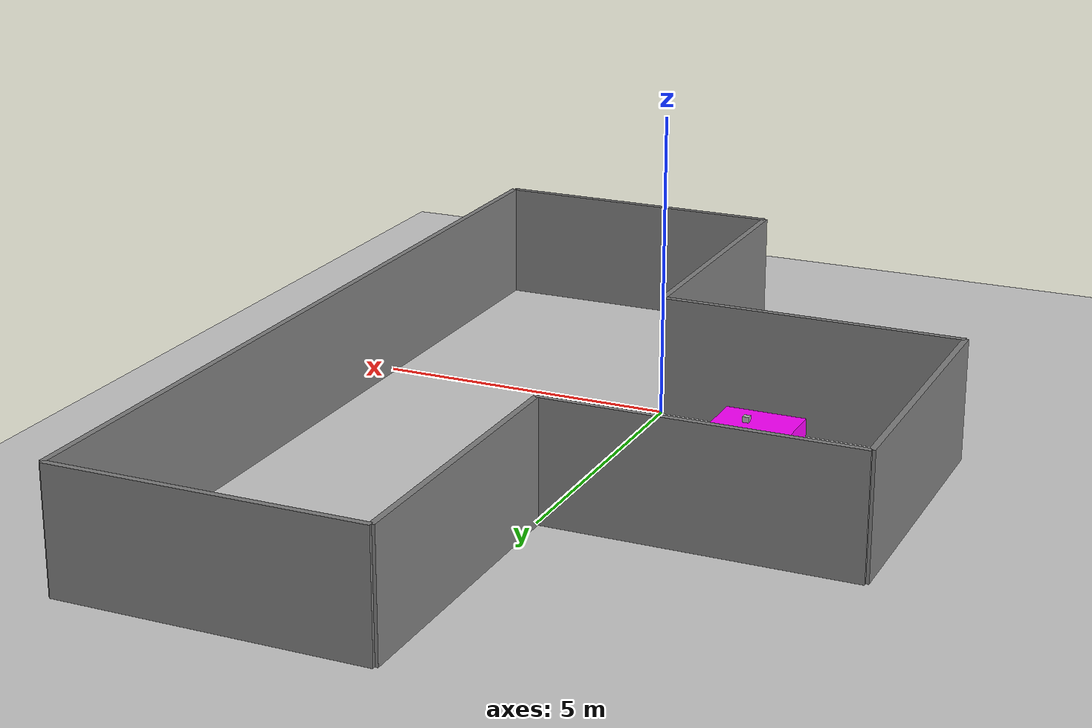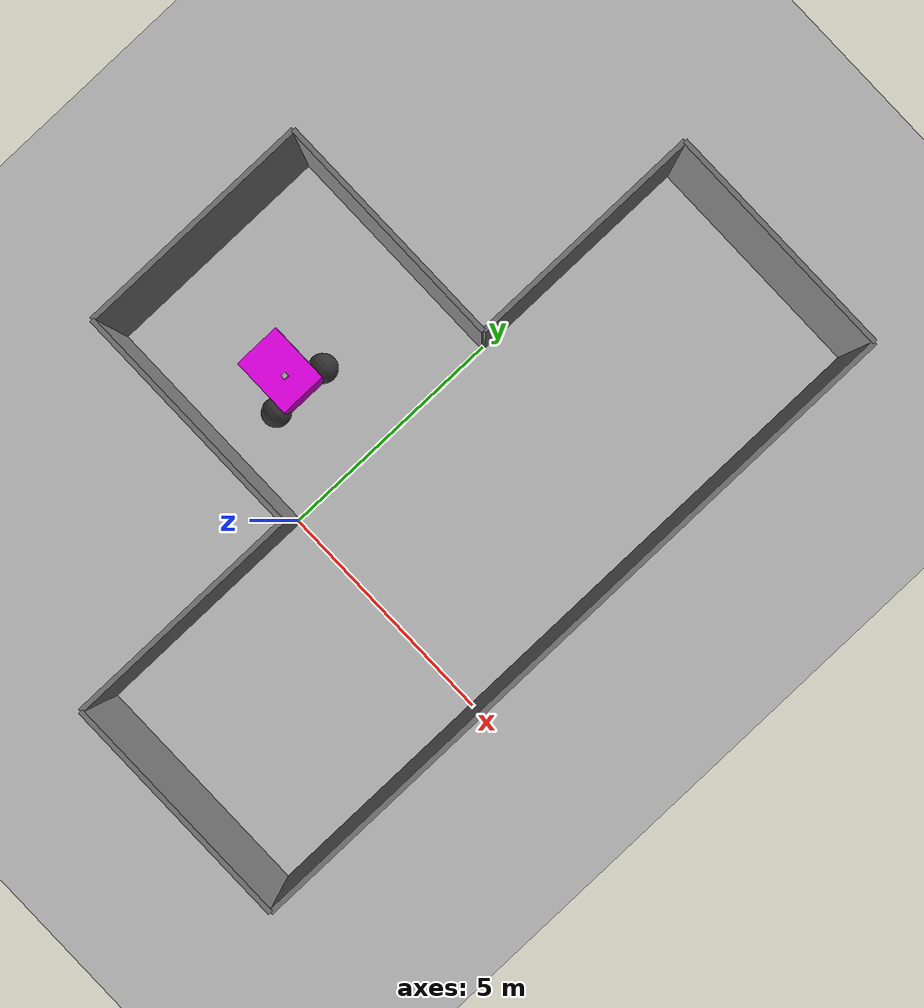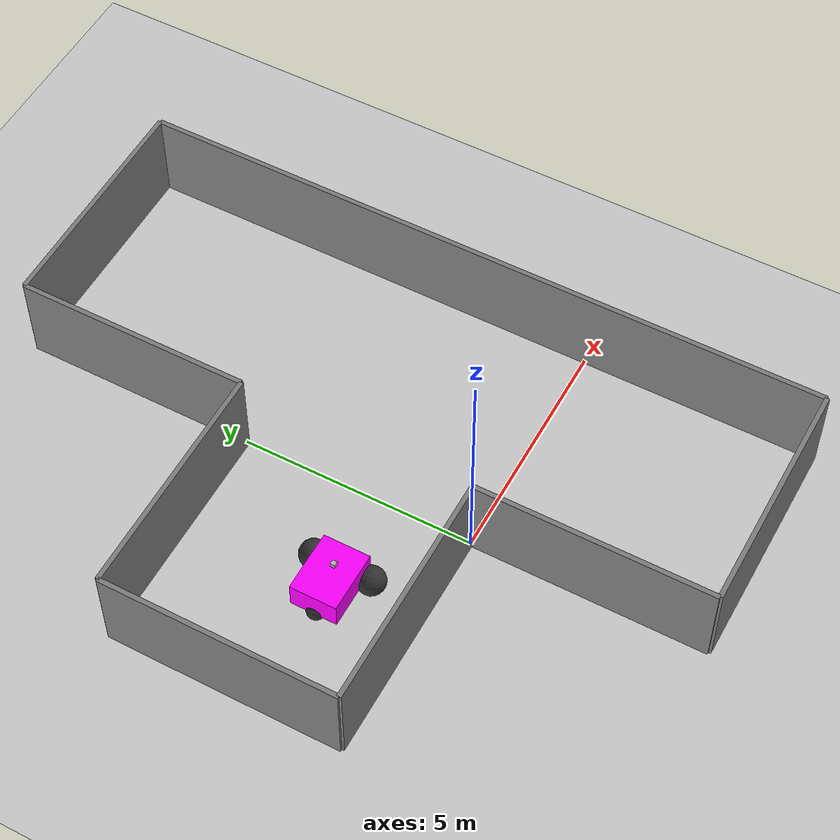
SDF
<?xml version="1.0" ?>
<sdf version="1.8">
  <world name="demo">
    <plugin
      filename="gz-sim-physics-system"
      name="gz::sim::systems::Physics">
    </plugin>
    <plugin
      filename="gz-sim-sensors-system"
      name="gz::sim::systems::Sensors">
      <render_engine>ogre2</render_engine>
    </plugin>
    <plugin
      filename="gz-sim-scene-broadcaster-system"
      name="gz::sim::systems::SceneBroadcaster">
    </plugin>
    <plugin
      filename="gz-sim-user-commands-system"
      name="gz::sim::systems::UserCommands">
    </plugin>
    <plugin
      filename="BasicSystem"
      name="ros_gz_example_gazebo::BasicSystem">
    </plugin>
    <plugin
      filename="FullSystem"
      name="ros_gz_example_gazebo::FullSystem">
    </plugin>

    <light name="sun" type="directional">
      <cast_shadows>true</cast_shadows>
      <pose>0 0 10 0 0 0</pose>
      <diffuse>0.8 0.8 0.8 1</diffuse>
      <specular>0.2 0.2 0.2 1</specular>
      <attenuation>
        <range>1000</range>
        <constant>0.9</constant>
        <linear>0.01</linear>
        <quadratic>0.001</quadratic>
      </attenuation>
      <direction>-0.5 0.1 -0.9</direction>
    </light>

    <model name="ground_plane">
      <static>true</static>
      <link name="link">
        <collision name="collision">
          <geometry>
            <plane>
              <normal>0 0 1</normal>
              <size>100 100</size>
            </plane>
          </geometry>
        </collision>
        <visual name="visual">
          <geometry>
            <plane>
              <normal>0 0 1</normal>
              <size>100 100</size>
            </plane>
          </geometry>
          <material>
            <ambient>0.8 0.8 0.8 1</ambient>
            <diffuse>0.8 0.8 0.8 1</diffuse>
            <specular>0.8 0.8 0.8 1</specular>
          </material>
        </visual>
      </link>
    </model>

    <model name="diff_drive">
      <self_collide>true</self_collide>
      <pose>-2.1 1.8 0.35 0 0 0</pose>
      <include merge="true">
        <uri>package://ros_gz_example_description/models/diff_drive</uri>
      </include>

      <plugin
        filename="gz-sim-joint-state-publisher-system"
        name="gz::sim::systems::JointStatePublisher">
      </plugin>

      <plugin
        filename="gz-sim-pose-publisher-system"
        name="gz::sim::systems::PosePublisher">
        <publish_link_pose>true</publish_link_pose>
        <use_pose_vector_msg>true</use_pose_vector_msg>
        <static_publisher>true</static_publisher>
        <static_update_frequency>1</static_update_frequency>
      </plugin>

      <plugin
        filename="gz-sim-odometry-publisher-system"
        name="gz::sim::systems::OdometryPublisher">
        <odom_frame>diff_drive/odom</odom_frame>
        <robot_base_frame>diff_drive</robot_base_frame>
      </plugin>
    </model>

    <!-- Add walls -->
    <model name="wall_north">
      <static>true</static>
      <pose>-2.5 5 1 0 0 0</pose>
      <link name="link">
        <collision name="collision">
          <geometry>
            <box>
              <size>5 0.1 2</size>
            </box>
          </geometry>
        </collision>
        <visual name="visual">
          <geometry>
            <box>
              <size>5 0.1 2</size>
            </box>
          </geometry>
          <material>
            <ambient>0.5 0.5 0.5 1</ambient>
            <diffuse>0.5 0.5 0.5 1</diffuse>
            <specular>0.5 0.5 0.5 1</specular>
          </material>
        </visual>
      </link>
    </model>

    <model name="wall_north_two">
      <static>true</static>
      <pose>2.5 10 1 0 0 0</pose>
      <link name="link">
        <collision name="collision">
          <geometry>
            <box>
              <size>5 0.1 2</size>
            </box>
          </geometry>
        </collision>
        <visual name="visual">
          <geometry>
            <box>
              <size>5 0.1 2</size>
            </box>
          </geometry>
          <material>
            <ambient>0.5 0.5 0.5 1</ambient>
            <diffuse>0.5 0.5 0.5 1</diffuse>
            <specular>0.5 0.5 0.5 1</specular>
          </material>
        </visual>
      </link>
    </model>

    <model name="wall_south">
      <static>true</static>
      <pose>-2.5 0 1 0 0 0</pose>
      <link name="link">
        <collision name="collision">
          <geometry>
            <box>
              <size>5 0.1 2</size>
            </box>
          </geometry>
        </collision>
        <visual name="visual">
          <geometry>
            <box>
              <size>5 0.1 2</size>
            </box>
          </geometry>
          <material>
            <ambient>0.5 0.5 0.5 1</ambient>
            <diffuse>0.5 0.5 0.5 1</diffuse>
            <specular>0.5 0.5 0.5 1</specular>
          </material>
        </visual>
      </link>
    </model>

    <model name="wall_south_two">
      <static>true</static>
      <pose>2.5 -5 1 0 0 0</pose>
      <link name="link">
        <collision name="collision">
          <geometry>
            <box>
              <size>5 0.1 2</size>
            </box>
          </geometry>
        </collision>
        <visual name="visual">
          <geometry>
            <box>
              <size>5 0.1 2</size>
            </box>
          </geometry>
          <material>
            <ambient>0.5 0.5 0.5 1</ambient>
            <diffuse>0.5 0.5 0.5 1</diffuse>
            <specular>0.5 0.5 0.5 1</specular>
          </material>
        </visual>
      </link>
    </model>

    <model name="wall_east">
      <static>true</static>
      <pose>5 2.5 1 0 0 0</pose>
      <link name="link">
        <collision name="collision">
          <geometry>
            <box>
              <size>0.1 15 2</size>
            </box>
          </geometry>
        </collision>
        <visual name="visual">
          <geometry>
            <box>
              <size>0.1 15 2</size>
            </box>
          </geometry>
          <material>
            <ambient>0.5 0.5 0.5 1</ambient>
            <diffuse>0.5 0.5 0.5 1</diffuse>
            <specular>0.5 0.5 0.5 1</specular>
          </material>
        </visual>
      </link>
    </model>

    <model name="wall_west">
      <static>true</static>
      <pose>-5 2.5 1 0 0 0</pose>
      <link name="link">
        <collision name="collision">
          <geometry>
            <box>
              <size>0.1 5 2</size>
            </box>
          </geometry>
        </collision>
        <visual name="visual">
          <geometry>
            <box>
              <size>0.1 5 2</size>
            </box>
          </geometry>
          <material>
            <ambient>0.5 0.5 0.5 1</ambient>
            <diffuse>0.5 0.5 0.5 1</diffuse>
            <specular>0.5 0.5 0.5 1</specular>
          </material>
        </visual>
      </link>
    </model>
    <model name="wall_west_two">
      <static>true</static>
      <pose>0 -2.5 1 0 0 0</pose>
      <link name="link">
        <collision name="collision">
          <geometry>
            <box>
              <size>0.1 5 2</size>
            </box>
          </geometry>
        </collision>
        <visual name="visual">
          <geometry>
            <box>
              <size>0.1 5 2</size>
            </box>
          </geometry>
          <material>
            <ambient>0.5 0.5 0.5 1</ambient>
            <diffuse>0.5 0.5 0.5 1</diffuse>
            <specular>0.5 0.5 0.5 1</specular>
          </material>
        </visual>
      </link>
    </model>

    <model name="wall_west_three">
      <static>true</static>
      <pose>0 7.5 1 0 0 0</pose>
      <link name="link">
        <collision name="collision">
          <geometry>
            <box>
              <size>0.1 5 2</size>
            </box>
          </geometry>
        </collision>
        <visual name="visual">
          <geometry>
            <box>
              <size>0.1 5 2</size>
            </box>
          </geometry>
          <material>
            <ambient>0.5 0.5 0.5 1</ambient>
            <diffuse>0.5 0.5 0.5 1</diffuse>
            <specular>0.5 0.5 0.5 1</specular>
          </material>
        </visual>
      </link>
    </model>
  </world>
</sdf>

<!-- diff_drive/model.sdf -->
<sdf version="1.8">
    <model name='diff_drive'>
      <link name='chassis'>
        <pose>-0.151427 -0 0.175 0 -0 0</pose>
        <inertial>
          <mass>1.14395</mass>
          <inertia>
            <ixx>0.126164</ixx>
            <ixy>0</ixy>
            <ixz>0</ixz>
            <iyy>0.416519</iyy>
            <iyz>0</iyz>
            <izz>0.481014</izz>
          </inertia>
        </inertial>
        <visual name='visual_chassis'>
          <geometry>
            <box>
              <size>1.3 1 0.568726</size>
            </box>
          </geometry>
          <material>
            <ambient>1.0 0.0 1.0 1</ambient>
            <diffuse>1.0 0.0 1.0 1</diffuse>
            <specular>1.0 0.0 1.0 1</specular>
          </material>
        </visual>
        <collision name='collision_chassis'>
          <geometry>
            <box>
              <size>1.3 1 0.568726</size>
            </box>
          </geometry>
        </collision>
      </link>

      <link name='left_wheel'>
        <pose>0.3 0.625029 -0.025 -1.5707 0 0</pose>
        <inertial>
          <mass>2</mass>
          <inertia>
            <ixx>0.145833</ixx>
            <ixy>0</ixy>
            <ixz>0</ixz>
            <iyy>0.145833</iyy>
            <iyz>0</iyz>
            <izz>0.125</izz>
          </inertia>
        </inertial>
        <visual name='visual_left_wheel'>
          <geometry>
            <sphere>
              <radius>0.3</radius>
            </sphere>
          </geometry>
          <material>
            <ambient>0.2 0.2 0.2 1</ambient>
            <diffuse>0.2 0.2 0.2 1</diffuse>
            <specular>0.2 0.2 0.2 1</specular>
          </material>
        </visual>
        <collision name='collision_left_wheel'>
          <geometry>
            <sphere>
              <radius>0.3</radius>
            </sphere>
          </geometry>
        </collision>
      </link>

      <link name='right_wheel'>
        <pose>0.3 -0.625029 -0.025 -1.5707 0 0</pose>
        <inertial>
          <mass>2</mass>
          <inertia>
            <ixx>0.145833</ixx>
            <ixy>0</ixy>
            <ixz>0</ixz>
            <iyy>0.145833</iyy>
            <iyz>0</iyz>
            <izz>0.125</izz>
          </inertia>
        </inertial>
        <visual name='visual_right_wheel'>
          <geometry>
            <sphere>
              <radius>0.3</radius>
            </sphere>
          </geometry>
          <material>
            <ambient>0.2 0.2 0.2 1</ambient>
            <diffuse>0.2 0.2 0.2 1</diffuse>
            <specular>0.2 0.2 0.2 1</specular>
          </material>
        </visual>
        <collision name='collision_right_wheel'>
          <geometry>
            <sphere>
              <radius>0.3</radius>
            </sphere>
          </geometry>
        </collision>
      </link>

      <link name='caster'>
        <pose>-0.7 -0 -0.125 0 -0 0</pose>
        <inertial>
          <mass>1</mass>
          <inertia>
            <ixx>0.1</ixx>
            <ixy>0</ixy>
            <ixz>0</ixz>
            <iyy>0.1</iyy>
            <iyz>0</iyz>
            <izz>0.1</izz>
          </inertia>
        </inertial>
        <visual name='visual_caster'>
          <geometry>
            <sphere>
              <radius>0.2</radius>
            </sphere>
          </geometry>
          <material>
            <ambient>0.2 0.2 0.2 1</ambient>
            <diffuse>0.2 0.2 0.2 1</diffuse>
            <specular>0.2 0.2 0.2 1</specular>
          </material>
        </visual>
        <collision name='collision_caster'>
          <geometry>
            <sphere>
              <radius>0.2</radius>
            </sphere>
          </geometry>
        </collision>
      </link>

      <link name="lidar_link">
        <pose>0 0 0.5 0 0 0</pose>
        <inertial>
          <mass>0.1</mass>
          <inertia>
            <ixx>0.000166667</ixx>
            <iyy>0.000166667</iyy>
            <izz>0.000166667</izz>
          </inertia>
        </inertial>
        <collision name="collision">
          <geometry>
            <box>
              <size>0.1 0.1 0.1</size>
            </box>
          </geometry>
        </collision>
        <visual name="visual">
          <geometry>
            <box>
              <size>0.1 0.1 0.1</size>
            </box>
          </geometry>
        </visual>
        <sensor name='gpu_lidar' type='gpu_lidar'>
          <pose>0 0 0 0 0 0</pose>
          <topic>scan</topic>
           <gz_frame_id>diff_drive/lidar_link</gz_frame_id>
          <update_rate>10</update_rate>
          <lidar>
            <scan>
              <horizontal>
                <samples>640</samples>
                <resolution>1</resolution>
                <min_angle>-1.57</min_angle>
                <max_angle>1.57</max_angle>
              </horizontal>
              <vertical>
                <samples>1</samples>
                <resolution>1</resolution>
                <min_angle>0.0</min_angle>
                <max_angle>0.0</max_angle>
              </vertical>
            </scan>
            <range>
              <min>0.08</min>
              <max>10.0</max>
              <resolution>0.01</resolution>
            </range>
          </lidar>
          <visualize>true</visualize>
        </sensor>
      </link>

      <link name="rlidar_link">
        <pose>0 0 0.5 0 0 0</pose>
        <inertial>
          <mass>0.1</mass>
          <inertia>
            <ixx>0.000166667</ixx>
            <iyy>0.000166667</iyy>
            <izz>0.000166667</izz>
          </inertia>
        </inertial>
        <collision name="collision">
          <geometry>
            <box>
              <size>0.1 0.1 0.1</size>
            </box>
          </geometry>
        </collision>
        <visual name="visual">
          <geometry>
            <box>
              <size>0.1 0.1 0.1</size>
            </box>
          </geometry>
        </visual>
        <sensor name='lidar_derecha' type='gpu_lidar'>
          <pose>0 0 0 0 0 0</pose>
          <topic>rscan</topic>
           <gz_frame_id>diff_drive/lidar_link</gz_frame_id>
          <update_rate>10</update_rate>
          <lidar>
            <scan>
              <horizontal>
                <samples>640</samples>
                <resolution>1</resolution>
                <min_angle>4.18</min_angle>
                <max_angle>5.23</max_angle>
              </horizontal>
              <vertical>
                <samples>1</samples>
                <resolution>1</resolution>
                <min_angle>0.0</min_angle>
                <max_angle>0.0</max_angle>
              </vertical>
            </scan>
            <range>
              <min>0.08</min>
              <max>10.0</max>
              <resolution>0.01</resolution>
            </range>
          </lidar>
          <visualize>true</visualize>
        </sensor>
      </link>

      <joint name='lidar_joint' type='fixed'>
        <parent>chassis</parent>
        <child>lidar_link</child>
      </joint>

      <joint name='rlidar_joint' type='fixed'>
        <parent>chassis</parent>
        <child>rlidar_link</child>
      </joint>

      <joint name='left_wheel_joint' type='revolute'>
        <parent>chassis</parent>
        <child>left_wheel</child>
        <axis>
          <xyz>0 0 1</xyz>
          <limit>
            <lower>-1.79769e+308</lower>
            <upper>1.79769e+308</upper>
          </limit>
        </axis>
      </joint>

      <joint name='right_wheel_joint' type='revolute'>
        <parent>chassis</parent>
        <child>right_wheel</child>
        <axis>
          <xyz>0 0 1</xyz>
          <limit>
            <lower>-1.79769e+308</lower>
            <upper>1.79769e+308</upper>
          </limit>
        </axis>
      </joint>

      <joint name='caster_wheel' type='ball'>
        <parent>chassis</parent>
        <child>caster</child>
      </joint>

      <plugin
        filename="ignition-gazebo-diff-drive-system"
        name="ignition::gazebo::systems::DiffDrive">
        <left_joint>left_wheel_joint</left_joint>
        <right_joint>right_wheel_joint</right_joint>
        <wheel_separation>1.25</wheel_separation>
        <wheel_radius>0.3</wheel_radius>
        <odom_publish_frequency>1</odom_publish_frequency>
        <max_linear_acceleration>1</max_linear_acceleration>
        <min_linear_acceleration>-1</min_linear_acceleration>
        <max_angular_acceleration>2</max_angular_acceleration>
        <min_angular_acceleration>-2</min_angular_acceleration>
        <max_linear_velocity>3</max_linear_velocity>
        <min_linear_velocity>-0.5</min_linear_velocity>
        <max_angular_velocity>1</max_angular_velocity>
        <min_angular_velocity>-1</min_angular_velocity>
      </plugin>
    </model>
</sdf>
